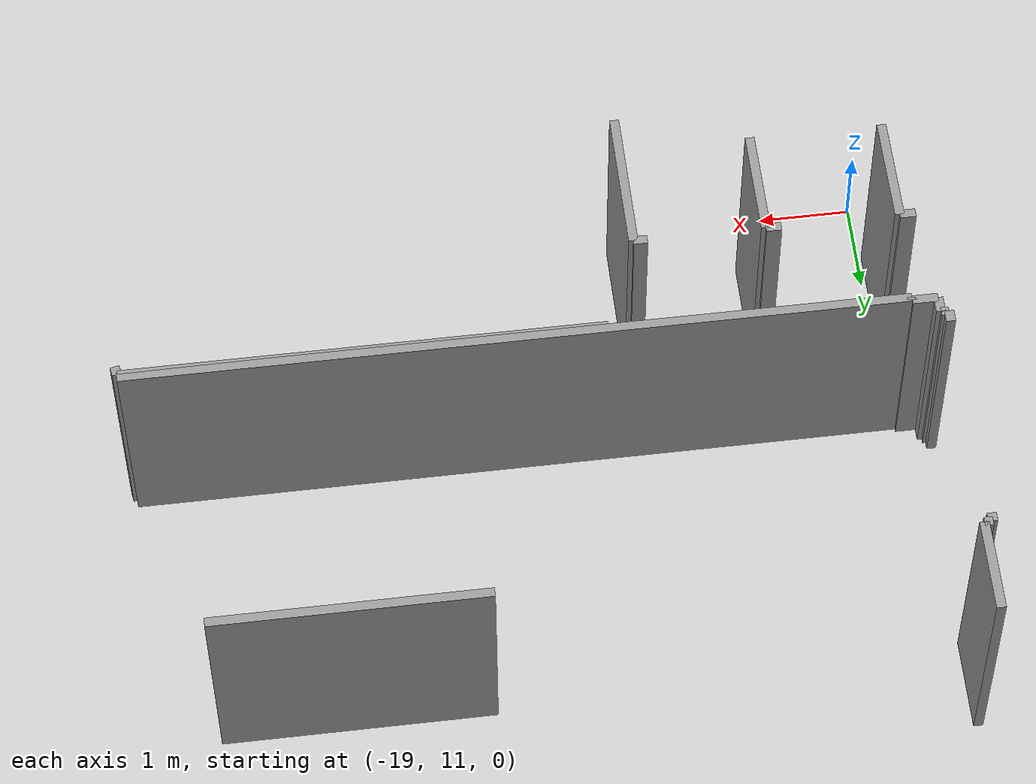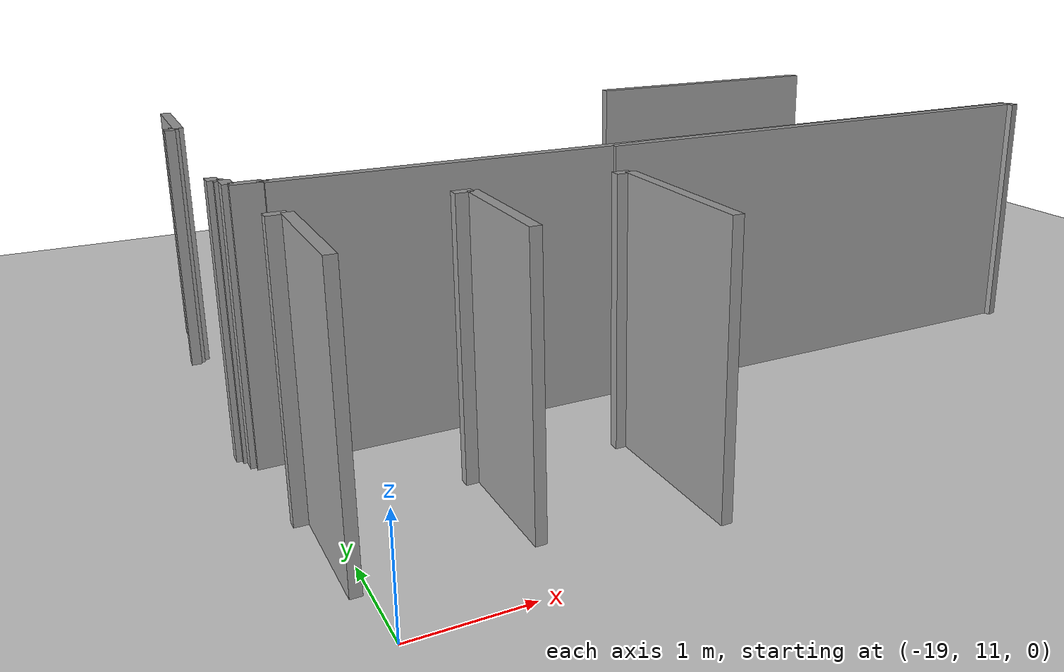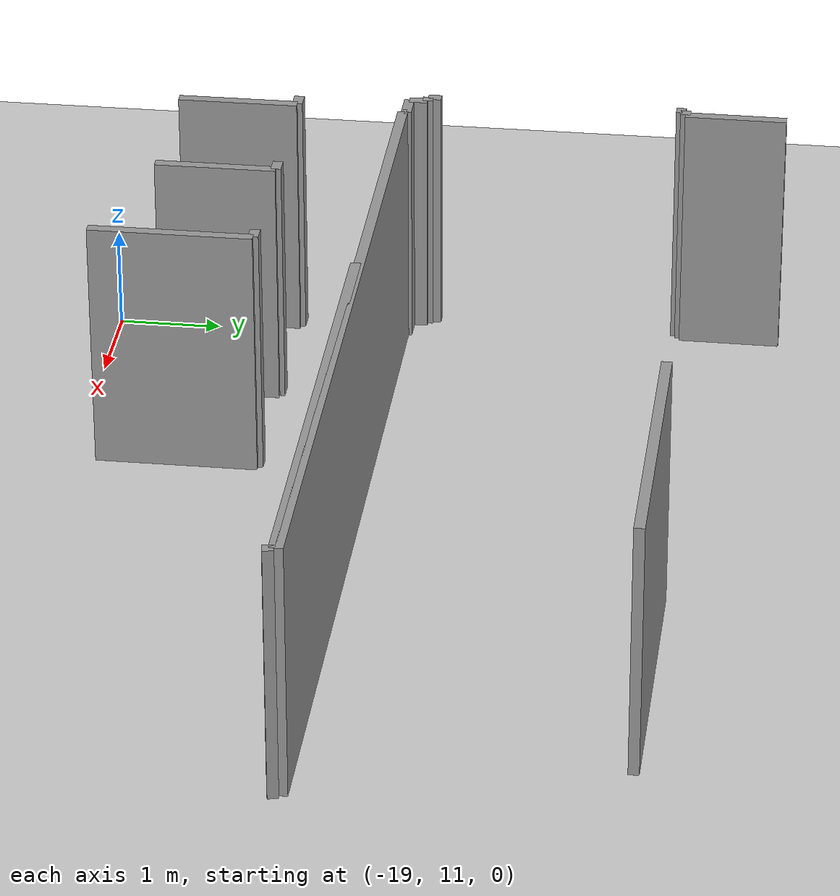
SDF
<sdf version="1.6">
 <world name="default">
  <model name="ground_plane">
   <static>1</static>
   <link name="link">
    <collision name="collision">
     <geometry><plane><normal>0 0 1</normal><size>100 100</size></plane></geometry>
     <surface><friction><ode><mu>100</mu><mu2>50</mu2></ode></friction></surface>
    </collision>
    <visual name="visual">
     <cast_shadows>0</cast_shadows>
     <geometry><plane><normal>0 0 1</normal><size>100 100</size></plane></geometry>
     <material>
      <script><uri>file://media/materials/scripts/gazebo.material</uri><name>Gazebo/Grey</name></script>
     </material>
    </visual>
   </link>
  </model>
  <model name="0510032267_A_40_1_101">
   <static>1</static>
   <link name="Wall_120">
    <collision name="Wall_120_Collision">
     <geometry><box><size>0.170416637544 0.1 2.5</size></box></geometry>
     <pose>0.0852083187719 0 1.25 0 0 0</pose>
    </collision>
    <visual name="Wall_120_Visual">
     <pose>0.0852083187719 0 1.25 0 0 0</pose>
     <geometry><box><size>0.170416637544 0.1 2.5</size></box></geometry>
     <material>
      <script><uri>file://media/materials/scripts/gazebo.material</uri><name>Gazebo/Grey</name></script>
      <ambient>1 1 1 1</ambient>
     </material>
    </visual>
    <pose>28.525660984 -20.8663163446 0 0 0 0.0</pose>
   </link>
   <link name="Wall_121">
    <collision name="Wall_121_Collision">
     <geometry><box><size>1.17563334371 0.1 2.5</size></box></geometry>
     <pose>0.587816671856 0 1.25 0 0 0</pose>
    </collision>
    <visual name="Wall_121_Visual">
     <pose>0.587816671856 0 1.25 0 0 0</pose>
     <geometry><box><size>1.17563334371 0.1 2.5</size></box></geometry>
     <material>
      <script><uri>file://media/materials/scripts/gazebo.material</uri><name>Gazebo/Grey</name></script>
      <ambient>1 1 1 1</ambient>
     </material>
    </visual>
    <pose>28.6960776215 -20.8663163446 0 0 0 -1.57079632679</pose>
   </link>
   <link name="Wall_124">
    <collision name="Wall_124_Collision">
     <geometry><box><size>0.162156323271 0.1 2.5</size></box></geometry>
     <pose>0.0810781616353 0 1.25 0 0 0</pose>
    </collision>
    <visual name="Wall_124_Visual">
     <pose>0.0810781616353 0 1.25 0 0 0</pose>
     <geometry><box><size>0.162156323271 0.1 2.5</size></box></geometry>
     <material>
      <script><uri>file://media/materials/scripts/gazebo.material</uri><name>Gazebo/Grey</name></script>
      <ambient>1 1 1 1</ambient>
     </material>
    </visual>
    <pose>29.9564744979 -20.8658080176 0 0 0 0.0</pose>
   </link>
   <link name="Wall_125">
    <collision name="Wall_125_Collision">
     <geometry><box><size>1.17321879031 0.1 2.5</size></box></geometry>
     <pose>0.586609395154 0 1.25 0 0 0</pose>
    </collision>
    <visual name="Wall_125_Visual">
     <pose>0.586609395154 0 1.25 0 0 0</pose>
     <geometry><box><size>1.17321879031 0.1 2.5</size></box></geometry>
     <material>
      <script><uri>file://media/materials/scripts/gazebo.material</uri><name>Gazebo/Grey</name></script>
      <ambient>1 1 1 1</ambient>
     </material>
    </visual>
    <pose>30.1186308211 -20.8658080176 0 0 0 -1.57079632679</pose>
   </link>
   <link name="Wall_128">
    <collision name="Wall_128_Collision">
     <geometry><box><size>0.148177329885 0.1 2.5</size></box></geometry>
     <pose>0.0740886649426 0 1.25 0 0 0</pose>
    </collision>
    <visual name="Wall_128_Visual">
     <pose>0.0740886649426 0 1.25 0 0 0</pose>
     <geometry><box><size>0.148177329885 0.1 2.5</size></box></geometry>
     <material>
      <script><uri>file://media/materials/scripts/gazebo.material</uri><name>Gazebo/Grey</name></script>
      <ambient>1 1 1 1</ambient>
     </material>
    </visual>
    <pose>31.3749610812 -20.8686038163 0 0 0 0.0</pose>
   </link>
   <link name="Wall_129">
    <collision name="Wall_129_Collision">
     <geometry><box><size>1.5725096741 0.1 2.5</size></box></geometry>
     <pose>0.786254837049 0 1.25 0 0 0</pose>
    </collision>
    <visual name="Wall_129_Visual">
     <pose>0.786254837049 0 1.25 0 0 0</pose>
     <geometry><box><size>1.5725096741 0.1 2.5</size></box></geometry>
     <material>
      <script><uri>file://media/materials/scripts/gazebo.material</uri><name>Gazebo/Grey</name></script>
      <ambient>1 1 1 1</ambient>
     </material>
    </visual>
    <pose>31.5231384111 -20.8686038163 0 0 0 -1.57079632679</pose>
   </link>
   <link name="Wall_147">
    <collision name="Wall_147_Collision">
     <geometry><box><size>5.0783141334 0.1 2.5</size></box></geometry>
     <pose>2.5391570667 0 1.25 0 0 0</pose>
    </collision>
    <visual name="Wall_147_Visual">
     <pose>2.5391570667 0 1.25 0 0 0</pose>
     <geometry><box><size>5.0783141334 0.1 2.5</size></box></geometry>
     <material>
      <script><uri>file://media/materials/scripts/gazebo.material</uri><name>Gazebo/Grey</name></script>
      <ambient>1 1 1 1</ambient>
     </material>
    </visual>
    <pose>31.9195064145 -19.8440706829 0 0 0 0.0</pose>
   </link>
   <link name="Wall_148">
    <collision name="Wall_148_Collision">
     <geometry><box><size>0.10206342576 0.1 2.5</size></box></geometry>
     <pose>0.0510317128799 0 1.25 0 0 0</pose>
    </collision>
    <visual name="Wall_148_Visual">
     <pose>0.0510317128799 0 1.25 0 0 0</pose>
     <geometry><box><size>0.10206342576 0.1 2.5</size></box></geometry>
     <material>
      <script><uri>file://media/materials/scripts/gazebo.material</uri><name>Gazebo/Grey</name></script>
      <ambient>1 1 1 1</ambient>
     </material>
    </visual>
    <pose>36.9978205478 -19.8440706829 0 0 0 -1.38292428854</pose>
   </link>
   <link name="Wall_279">
    <collision name="Wall_279_Collision">
     <geometry><box><size>2.88501007123 0.1 2.5</size></box></geometry>
     <pose>1.44250503561 0 1.25 0 0 0</pose>
    </collision>
    <visual name="Wall_279_Visual">
     <pose>1.44250503561 0 1.25 0 0 0</pose>
     <geometry><box><size>2.88501007123 0.1 2.5</size></box></geometry>
     <material>
      <script><uri>file://media/materials/scripts/gazebo.material</uri><name>Gazebo/Grey</name></script>
      <ambient>1 1 1 1</ambient>
     </material>
    </visual>
    <pose>33.4385146684 -16.8389683503 0 0 0 0.0</pose>
   </link>
   <link name="Wall_289">
    <collision name="Wall_289_Collision">
     <geometry><box><size>8.25878929209 0.1 2.5</size></box></geometry>
     <pose>4.12939464605 0 1.25 0 0 0</pose>
    </collision>
    <visual name="Wall_289_Visual">
     <pose>4.12939464605 0 1.25 0 0 0</pose>
     <geometry><box><size>8.25878929209 0.1 2.5</size></box></geometry>
     <material>
      <script><uri>file://media/materials/scripts/gazebo.material</uri><name>Gazebo/Grey</name></script>
      <ambient>1 1 1 1</ambient>
     </material>
    </visual>
    <pose>37.0048100445 -19.8123002434 0 0 0 3.14159265359</pose>
   </link>
   <link name="Wall_290">
    <collision name="Wall_290_Collision">
     <geometry><box><size>0.0332954206089 0.1 2.5</size></box></geometry>
     <pose>0.0166477103044 0 1.25 0 0 0</pose>
    </collision>
    <visual name="Wall_290_Visual">
     <pose>0.0166477103044 0 1.25 0 0 0</pose>
     <geometry><box><size>0.0332954206089 0.1 2.5</size></box></geometry>
     <material>
      <script><uri>file://media/materials/scripts/gazebo.material</uri><name>Gazebo/Grey</name></script>
      <ambient>1 1 1 1</ambient>
     </material>
    </visual>
    <pose>28.7460207525 -19.8123002434 0 0 0 1.57079632679</pose>
   </link>
   <link name="Wall_291">
    <collision name="Wall_291_Collision">
     <geometry><box><size>0.270048735854 0.1 2.5</size></box></geometry>
     <pose>0.135024367927 0 1.25 0 0 0</pose>
    </collision>
    <visual name="Wall_291_Visual">
     <pose>0.135024367927 0 1.25 0 0 0</pose>
     <geometry><box><size>0.270048735854 0.1 2.5</size></box></geometry>
     <material>
      <script><uri>file://media/materials/scripts/gazebo.material</uri><name>Gazebo/Grey</name></script>
      <ambient>1 1 1 1</ambient>
     </material>
    </visual>
    <pose>28.7460207525 -19.7790048228 0 0 0 3.14159265359</pose>
   </link>
   <link name="Wall_292">
    <collision name="Wall_292_Collision">
     <geometry><box><size>0.178549870059 0.1 2.5</size></box></geometry>
     <pose>0.0892749350295 0 1.25 0 0 0</pose>
    </collision>
    <visual name="Wall_292_Visual">
     <pose>0.0892749350295 0 1.25 0 0 0</pose>
     <geometry><box><size>0.178549870059 0.1 2.5</size></box></geometry>
     <material>
      <script><uri>file://media/materials/scripts/gazebo.material</uri><name>Gazebo/Grey</name></script>
      <ambient>1 1 1 1</ambient>
     </material>
    </visual>
    <pose>28.4759720166 -19.7790048228 0 0 0 1.57079632679</pose>
   </link>
   <link name="Wall_293">
    <collision name="Wall_293_Collision">
     <geometry><box><size>0.0831114697641 0.1 2.5</size></box></geometry>
     <pose>0.041555734882 0 1.25 0 0 0</pose>
    </collision>
    <visual name="Wall_293_Visual">
     <pose>0.041555734882 0 1.25 0 0 0</pose>
     <geometry><box><size>0.0831114697641 0.1 2.5</size></box></geometry>
     <material>
      <script><uri>file://media/materials/scripts/gazebo.material</uri><name>Gazebo/Grey</name></script>
      <ambient>1 1 1 1</ambient>
     </material>
    </visual>
    <pose>28.4759720166 -19.6004549527 0 0 0 3.14159265359</pose>
   </link>
   <link name="Wall_294">
    <collision name="Wall_294_Collision">
     <geometry><box><size>0.128860902662 0.1 2.5</size></box></geometry>
     <pose>0.0644304513309 0 1.25 0 0 0</pose>
    </collision>
    <visual name="Wall_294_Visual">
     <pose>0.0644304513309 0 1.25 0 0 0</pose>
     <geometry><box><size>0.128860902662 0.1 2.5</size></box></geometry>
     <material>
      <script><uri>file://media/materials/scripts/gazebo.material</uri><name>Gazebo/Grey</name></script>
      <ambient>1 1 1 1</ambient>
     </material>
    </visual>
    <pose>28.3928605468 -19.6004549527 0 0 0 1.57079632679</pose>
   </link>
   <link name="Wall_295">
    <collision name="Wall_295_Collision">
     <geometry><box><size>0.0939134191982 0.1 2.5</size></box></geometry>
     <pose>0.0469567095991 0 1.25 0 0 0</pose>
    </collision>
    <visual name="Wall_295_Visual">
     <pose>0.0469567095991 0 1.25 0 0 0</pose>
     <geometry><box><size>0.0939134191982 0.1 2.5</size></box></geometry>
     <material>
      <script><uri>file://media/materials/scripts/gazebo.material</uri><name>Gazebo/Grey</name></script>
      <ambient>1 1 1 1</ambient>
     </material>
    </visual>
    <pose>28.3928605468 -17.1477770223 0 0 0 1.57079632679</pose>
   </link>
   <link name="Wall_296">
    <collision name="Wall_296_Collision">
     <geometry><box><size>0.0885759853602 0.1 2.5</size></box></geometry>
     <pose>0.0442879926801 0 1.25 0 0 0</pose>
    </collision>
    <visual name="Wall_296_Visual">
     <pose>0.0442879926801 0 1.25 0 0 0</pose>
     <geometry><box><size>0.0885759853602 0.1 2.5</size></box></geometry>
     <material>
      <script><uri>file://media/materials/scripts/gazebo.material</uri><name>Gazebo/Grey</name></script>
      <ambient>1 1 1 1</ambient>
     </material>
    </visual>
    <pose>28.3928605468 -17.0538636031 0 0 0 0.0</pose>
   </link>
   <link name="Wall_297">
    <collision name="Wall_297_Collision">
     <geometry><box><size>0.992408820685 0.1 2.5</size></box></geometry>
     <pose>0.496204410342 0 1.25 0 0 0</pose>
    </collision>
    <visual name="Wall_297_Visual">
     <pose>0.496204410342 0 1.25 0 0 0</pose>
     <geometry><box><size>0.992408820685 0.1 2.5</size></box></geometry>
     <material>
      <script><uri>file://media/materials/scripts/gazebo.material</uri><name>Gazebo/Grey</name></script>
      <ambient>1 1 1 1</ambient>
     </material>
    </visual>
    <pose>28.4814365322 -17.0538636031 0 0 0 1.56336913592</pose>
   </link>
   <pose>-47.8 33.6752466975 0 0 0 0</pose>
  </model>
 </world>
</sdf>
